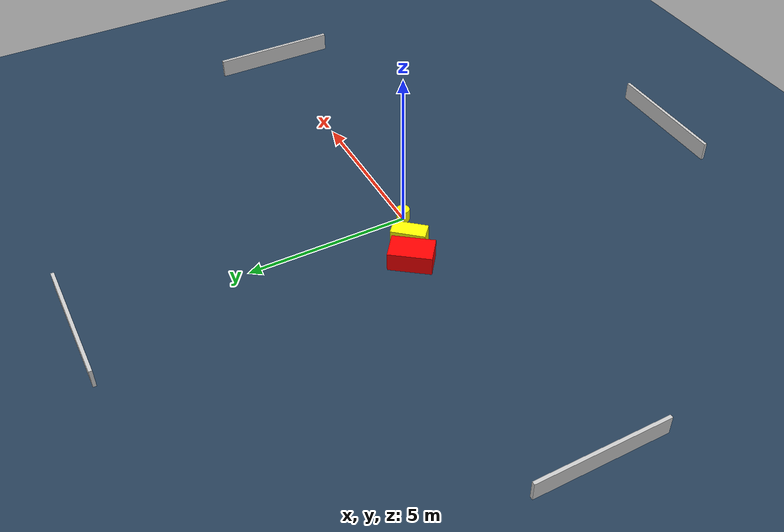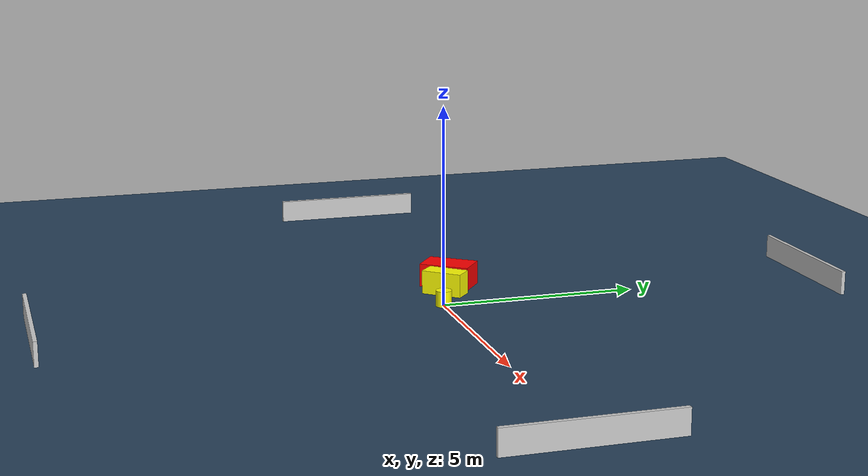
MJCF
<?xml version="1.0" ?>
<mujoco model="generated_environment">
  <option timestep="0.01" integrator="RK4" cone="elliptic"/>
  <default>
    <geom density="1"/>
  </default>
  <asset>
    <texture builtin="gradient" height="3072" name="skybox" rgb1="0.3 0.5 0.7" rgb2="0 0 0" type="skybox" width="512"/>
    <texture builtin="checker" height="300" name="groundplane" rgb1="0.2 0.3 0.4" rgb2="0.1 0.2 0.3" type="2d" width="300"/>
    <material name="groundplane" reflectance="0.2" texrepeat="5 5" texture="groundplane"/>
  </asset>
  <worldbody>
    <light dir="0 0 -1" directional="true" pos="0 0 1.5"/>
    <geom condim="3" friction="0.5 0.005 0.001" material="groundplane" name="floor" pos="0 0 0" size="0 0 0.05" type="plane"/>
    <body name="walls">
      <geom name="wall_1" condim="4" pos="-10.0 0.0 0.3" rgba="0.800000011920929 0.800000011920929 0.800000011920929 1.0" size="0.05 2.0 0.3" type="box"/>
      <geom name="wall_2" condim="4" pos="10.0 0.0 0.3" rgba="0.800000011920929 0.800000011920929 0.800000011920929 1.0" size="0.05 2.0 0.3" type="box"/>
      <geom name="wall_3" condim="4" pos="0.0 -10.0 0.3" rgba="0.800000011920929 0.800000011920929 0.800000011920929 1.0" size="2.0 0.05 0.3" type="box"/>
      <geom name="wall_4" condim="4" pos="0.0 10.0 0.3" rgba="0.800000011920929 0.800000011920929 0.800000011920929 1.0" size="2.0 0.05 0.3" type="box"/>
    </body>
    <body name="robot">
      <joint name="joint_x" type="slide" pos="0 0 0" axis="1 0 0"/>
      <joint name="joint_y" type="slide" pos="0 0 0" axis="0 1 0"/>
      <geom name="robot" type="cylinder" pos="0.0 0.0 0.2" size="0.2 0.2 0.0" mass="5.0" friction="1.0 0.005 0.0001" condim="4" rgba="1.0 1.0 0.0 1.0"/>
    </body>
    <body name="obstacle_1_movable">
      <geom name="obstacle_1_movable" condim="4" pos="-1.063345618691305 0.36080637543557215 0.3" euler="0 0 48.91136130066039" friction="0.0 0.005 0.001" rgba="1.0 1.0 0.0 1.0" size="0.526302698280364 0.25687829372066145 0.3" type="box" mass="0.1"/>
      <joint type="free"/>
    </body>
    <body name="obstacle_2_static">
      <geom name="obstacle_2_static" condim="4" pos="-1.798810821753861 0.6836721404323022 0.3" euler="0 0 142.93489197475165" friction="0.0 0.005 0.001" rgba="1.0 0.0 0.0 1.0" size="0.410580391933289 0.6521997715240768 0.3" type="box"/>
    </body>
  </worldbody>
  <actuator>
    <motor name="actuator_x" joint="joint_x" gear="1" ctrlrange="-1 1"/>
    <motor name="actuator_y" joint="joint_y" gear="1" ctrlrange="-1 1"/>
  </actuator>
</mujoco>
